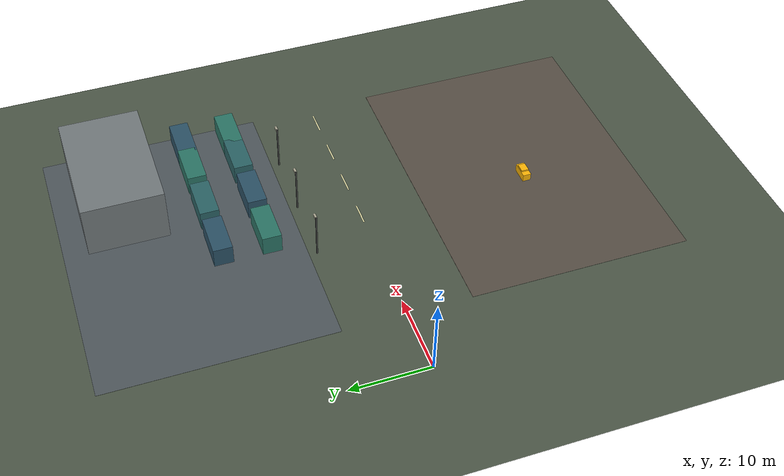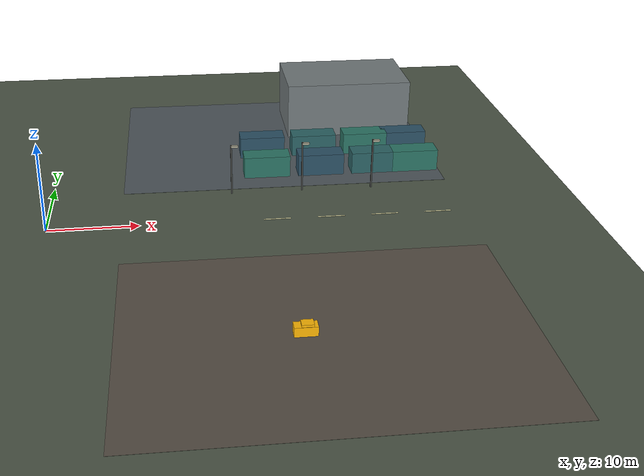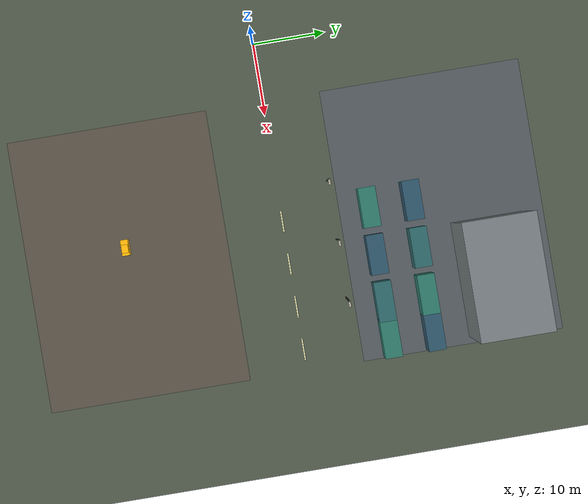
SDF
<sdf version="1.9">
 <world name="gsi_search_world_v2_industrial">
  <model name="ground_plane">
   <static>true</static>
   <link name="link">
    <collision name="collision">
     <geometry><plane><normal>0 0 1</normal><size>130 110</size></plane></geometry>
    </collision>
    <visual name="visual">
     <geometry><plane><normal>0 0 1</normal><size>130 110</size></plane></geometry>
     <material>
      <ambient>0.3 0.34 0.28 1</ambient>
      <diffuse>0.3 0.34 0.28 1</diffuse>
      <specular>0.12 0.12 0.12 1</specular>
     </material>
    </visual>
   </link>
  </model>
  <model name="semantic-loading-apron">
   <static>true</static>
   <pose>27 -22 0.015 0 0 0</pose>
   <link name="link">
    <visual name="visual">
     <geometry><box><size>38 28 0.02</size></box></geometry>
     <cast_shadows>false</cast_shadows>
     <material>
      <ambient>0.34 0.31 0.27 1</ambient>
      <diffuse>0.34 0.31 0.27 1</diffuse>
      <specular>0.12 0.12 0.12 1</specular>
     </material>
    </visual>
   </link>
  </model>
  <model name="semantic-container-storage">
   <static>true</static>
   <pose>27 22 0.015 0 0 0</pose>
   <link name="link">
    <visual name="visual">
     <geometry><box><size>38 28 0.02</size></box></geometry>
     <cast_shadows>false</cast_shadows>
     <material>
      <ambient>0.31 0.34 0.36 1</ambient>
      <diffuse>0.31 0.34 0.36 1</diffuse>
      <specular>0.12 0.12 0.12 1</specular>
     </material>
    </visual>
   </link>
  </model>
  <model name="haul-road-marking-13">
   <static>true</static>
   <pose>25 0 0.04 0 0 0</pose>
   <link name="link">
    <visual name="visual">
     <geometry><box><size>3 0.18 0.025</size></box></geometry>
     <cast_shadows>false</cast_shadows>
     <material>
      <ambient>0.92 0.9 0.68 1</ambient>
      <diffuse>0.92 0.9 0.68 1</diffuse>
      <specular>0.12 0.12 0.12 1</specular>
     </material>
    </visual>
   </link>
  </model>
  <model name="haul-road-marking-14">
   <static>true</static>
   <pose>31 0 0.04 0 0 0</pose>
   <link name="link">
    <visual name="visual">
     <geometry><box><size>3 0.18 0.025</size></box></geometry>
     <cast_shadows>false</cast_shadows>
     <material>
      <ambient>0.92 0.9 0.68 1</ambient>
      <diffuse>0.92 0.9 0.68 1</diffuse>
      <specular>0.12 0.12 0.12 1</specular>
     </material>
    </visual>
   </link>
  </model>
  <model name="haul-road-marking-15">
   <static>true</static>
   <pose>37 0 0.04 0 0 0</pose>
   <link name="link">
    <visual name="visual">
     <geometry><box><size>3 0.18 0.025</size></box></geometry>
     <cast_shadows>false</cast_shadows>
     <material>
      <ambient>0.92 0.9 0.68 1</ambient>
      <diffuse>0.92 0.9 0.68 1</diffuse>
      <specular>0.12 0.12 0.12 1</specular>
     </material>
    </visual>
   </link>
  </model>
  <model name="haul-road-marking-16">
   <static>true</static>
   <pose>43 0 0.04 0 0 0</pose>
   <link name="link">
    <visual name="visual">
     <geometry><box><size>3 0.18 0.025</size></box></geometry>
     <cast_shadows>false</cast_shadows>
     <material>
      <ambient>0.92 0.9 0.68 1</ambient>
      <diffuse>0.92 0.9 0.68 1</diffuse>
      <specular>0.12 0.12 0.12 1</specular>
     </material>
    </visual>
   </link>
  </model>
  <model name="maintenance-shop">
   <static>true</static>
   <pose>37 28 3.5 0 0 0</pose>
   <link name="link">
    <collision name="collision"><geometry><box><size>16 10 7</size></box></geometry></collision>
    <visual name="visual">
     <geometry><box><size>16 10 7</size></box></geometry>
     <material>
      <ambient>0.45 0.48 0.49 1</ambient>
      <diffuse>0.45 0.48 0.49 1</diffuse>
      <specular>0.12 0.12 0.12 1</specular>
     </material>
    </visual>
   </link>
  </model>
  <model name="container-03">
   <static>true</static>
   <pose>25 12 1.3 0 0 0</pose>
   <link name="link">
    <collision name="collision"><geometry><box><size>5.5 2.4 2.6</size></box></geometry></collision>
    <visual name="visual">
     <geometry><box><size>5.5 2.4 2.6</size></box></geometry>
     <material>
      <ambient>0.17 0.46 0.4 1</ambient>
      <diffuse>0.17 0.46 0.4 1</diffuse>
      <specular>0.12 0.12 0.12 1</specular>
     </material>
    </visual>
   </link>
  </model>
  <model name="container-04">
   <static>true</static>
   <pose>31.5 12 1.3 0 0 0</pose>
   <link name="link">
    <collision name="collision"><geometry><box><size>5.5 2.4 2.6</size></box></geometry></collision>
    <visual name="visual">
     <geometry><box><size>5.5 2.4 2.6</size></box></geometry>
     <material>
      <ambient>0.17 0.32 0.4 1</ambient>
      <diffuse>0.17 0.32 0.4 1</diffuse>
      <specular>0.12 0.12 0.12 1</specular>
     </material>
    </visual>
   </link>
  </model>
  <model name="container-05">
   <static>true</static>
   <pose>38 12 1.3 0 0 0</pose>
   <link name="link">
    <collision name="collision"><geometry><box><size>5.5 2.4 2.6</size></box></geometry></collision>
    <visual name="visual">
     <geometry><box><size>5.5 2.4 2.6</size></box></geometry>
     <material>
      <ambient>0.17 0.39 0.4 1</ambient>
      <diffuse>0.17 0.39 0.4 1</diffuse>
      <specular>0.12 0.12 0.12 1</specular>
     </material>
    </visual>
   </link>
  </model>
  <model name="container-06">
   <static>true</static>
   <pose>43 12 1.3 0 0 0</pose>
   <link name="link">
    <collision name="collision"><geometry><box><size>5.5 2.4 2.6</size></box></geometry></collision>
    <visual name="visual">
     <geometry><box><size>5.5 2.4 2.6</size></box></geometry>
     <material>
      <ambient>0.17 0.46 0.4 1</ambient>
      <diffuse>0.17 0.46 0.4 1</diffuse>
      <specular>0.12 0.12 0.12 1</specular>
     </material>
    </visual>
   </link>
  </model>
  <model name="container-07">
   <static>true</static>
   <pose>43 12 1.3 0 0 0</pose>
   <link name="link">
    <collision name="collision"><geometry><box><size>5.5 2.4 2.6</size></box></geometry></collision>
    <visual name="visual">
     <geometry><box><size>5.5 2.4 2.6</size></box></geometry>
     <material>
      <ambient>0.17 0.32 0.4 1</ambient>
      <diffuse>0.17 0.32 0.4 1</diffuse>
      <specular>0.12 0.12 0.12 1</specular>
     </material>
    </visual>
   </link>
  </model>
  <model name="container-10">
   <static>true</static>
   <pose>25 18 1.3 0 0 0</pose>
   <link name="link">
    <collision name="collision"><geometry><box><size>5.5 2.4 2.6</size></box></geometry></collision>
    <visual name="visual">
     <geometry><box><size>5.5 2.4 2.6</size></box></geometry>
     <material>
      <ambient>0.17 0.32 0.4 1</ambient>
      <diffuse>0.17 0.32 0.4 1</diffuse>
      <specular>0.12 0.12 0.12 1</specular>
     </material>
    </visual>
   </link>
  </model>
  <model name="container-11">
   <static>true</static>
   <pose>31.5 18 1.3 0 0 0</pose>
   <link name="link">
    <collision name="collision"><geometry><box><size>5.5 2.4 2.6</size></box></geometry></collision>
    <visual name="visual">
     <geometry><box><size>5.5 2.4 2.6</size></box></geometry>
     <material>
      <ambient>0.17 0.39 0.4 1</ambient>
      <diffuse>0.17 0.39 0.4 1</diffuse>
      <specular>0.12 0.12 0.12 1</specular>
     </material>
    </visual>
   </link>
  </model>
  <model name="container-12">
   <static>true</static>
   <pose>38 18 1.3 0 0 0</pose>
   <link name="link">
    <collision name="collision"><geometry><box><size>5.5 2.4 2.6</size></box></geometry></collision>
    <visual name="visual">
     <geometry><box><size>5.5 2.4 2.6</size></box></geometry>
     <material>
      <ambient>0.17 0.46 0.4 1</ambient>
      <diffuse>0.17 0.46 0.4 1</diffuse>
      <specular>0.12 0.12 0.12 1</specular>
     </material>
    </visual>
   </link>
  </model>
  <model name="container-13">
   <static>true</static>
   <pose>43 18 1.3 0 0 0</pose>
   <link name="link">
    <collision name="collision"><geometry><box><size>5.5 2.4 2.6</size></box></geometry></collision>
    <visual name="visual">
     <geometry><box><size>5.5 2.4 2.6</size></box></geometry>
     <material>
      <ambient>0.17 0.32 0.4 1</ambient>
      <diffuse>0.17 0.32 0.4 1</diffuse>
      <specular>0.12 0.12 0.12 1</specular>
     </material>
    </visual>
   </link>
  </model>
  <model name="container-14">
   <static>true</static>
   <pose>43 18 1.3 0 0 0</pose>
   <link name="link">
    <collision name="collision"><geometry><box><size>5.5 2.4 2.6</size></box></geometry></collision>
    <visual name="visual">
     <geometry><box><size>5.5 2.4 2.6</size></box></geometry>
     <material>
      <ambient>0.17 0.39 0.4 1</ambient>
      <diffuse>0.17 0.39 0.4 1</diffuse>
      <specular>0.12 0.12 0.12 1</specular>
     </material>
    </visual>
   </link>
  </model>
  <model name="utility-pole-08">
   <static>true</static>
   <pose>20.4545 7 3 0 0 0</pose>
   <link name="link">
    <collision name="collision"><geometry><box><size>0.18 0.18 6</size></box></geometry></collision>
    <visual name="visual">
     <geometry><box><size>0.18 0.18 6</size></box></geometry>
     <material>
      <ambient>0.24 0.25 0.24 1</ambient>
      <diffuse>0.24 0.25 0.24 1</diffuse>
      <specular>0.12 0.12 0.12 1</specular>
     </material>
    </visual>
   </link>
  </model>
  <model name="utility-pole-08-lamp">
   <static>true</static>
   <pose>20.8345 7 5.85 0 0 0</pose>
   <link name="link">
    <visual name="visual">
     <geometry><box><size>0.8 0.28 0.22</size></box></geometry>
     <material>
      <ambient>0.66 0.65 0.57 1</ambient>
      <diffuse>0.66 0.65 0.57 1</diffuse>
      <specular>0.12 0.12 0.12 1</specular>
     </material>
    </visual>
   </link>
  </model>
  <model name="utility-pole-09">
   <static>true</static>
   <pose>28.6364 7 3 0 0 0</pose>
   <link name="link">
    <collision name="collision"><geometry><box><size>0.18 0.18 6</size></box></geometry></collision>
    <visual name="visual">
     <geometry><box><size>0.18 0.18 6</size></box></geometry>
     <material>
      <ambient>0.24 0.25 0.24 1</ambient>
      <diffuse>0.24 0.25 0.24 1</diffuse>
      <specular>0.12 0.12 0.12 1</specular>
     </material>
    </visual>
   </link>
  </model>
  <model name="utility-pole-09-lamp">
   <static>true</static>
   <pose>29.0164 7 5.85 0 0 0</pose>
   <link name="link">
    <visual name="visual">
     <geometry><box><size>0.8 0.28 0.22</size></box></geometry>
     <material>
      <ambient>0.66 0.65 0.57 1</ambient>
      <diffuse>0.66 0.65 0.57 1</diffuse>
      <specular>0.12 0.12 0.12 1</specular>
     </material>
    </visual>
   </link>
  </model>
  <model name="utility-pole-10">
   <static>true</static>
   <pose>36.8182 7 3 0 0 0</pose>
   <link name="link">
    <collision name="collision"><geometry><box><size>0.18 0.18 6</size></box></geometry></collision>
    <visual name="visual">
     <geometry><box><size>0.18 0.18 6</size></box></geometry>
     <material>
      <ambient>0.24 0.25 0.24 1</ambient>
      <diffuse>0.24 0.25 0.24 1</diffuse>
      <specular>0.12 0.12 0.12 1</specular>
     </material>
    </visual>
   </link>
  </model>
  <model name="utility-pole-10-lamp">
   <static>true</static>
   <pose>37.1982 7 5.85 0 0 0</pose>
   <link name="link">
    <visual name="visual">
     <geometry><box><size>0.8 0.28 0.22</size></box></geometry>
     <material>
      <ambient>0.66 0.65 0.57 1</ambient>
      <diffuse>0.66 0.65 0.57 1</diffuse>
      <specular>0.12 0.12 0.12 1</specular>
     </material>
    </visual>
   </link>
  </model>
  <model name="yellow_search_van">
   <static>true</static>
   <pose>25 -22 0 0 0 3.14159</pose>
   <link name="body">
    <collision name="body_collision">
     <pose>0 0 0.5 0 0 0</pose>
     <geometry><box><size>2.2 1.05 1.0</size></box></geometry>
    </collision>
    <visual name="yellow_body">
     <pose>0 0 0.5 0 0 0</pose>
     <geometry><box><size>2.2 1.05 1.0</size></box></geometry>
     <material>
      <ambient>1 0.72 0.02 1</ambient>
      <diffuse>1 0.72 0.02 1</diffuse>
      <specular>0.12 0.12 0.12 1</specular>
     </material>
    </visual>
    <visual name="roof">
     <pose>-0.15 0 1.05 0 0 0</pose>
     <geometry><box><size>1.15 0.94 0.35</size></box></geometry>
     <material>
      <ambient>1 0.72 0.02 1</ambient>
      <diffuse>1 0.72 0.02 1</diffuse>
      <specular>0.12 0.12 0.12 1</specular>
     </material>
    </visual>
   </link>
  </model>
 </world>
</sdf>
